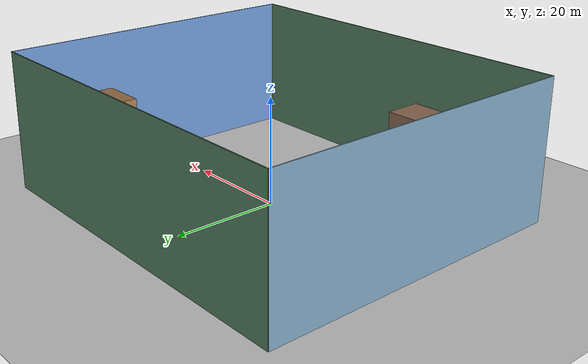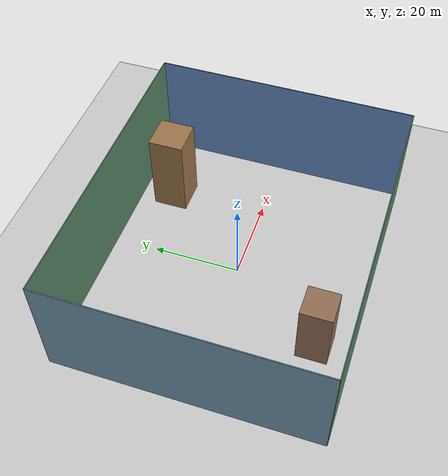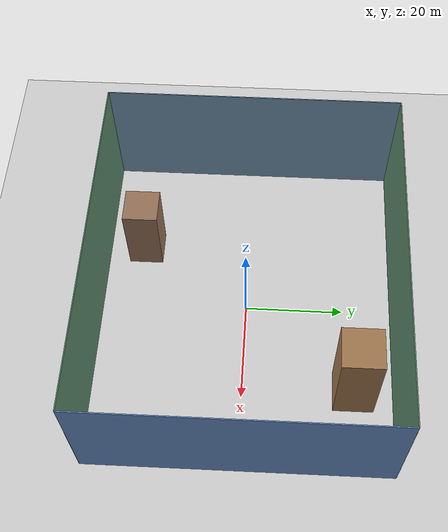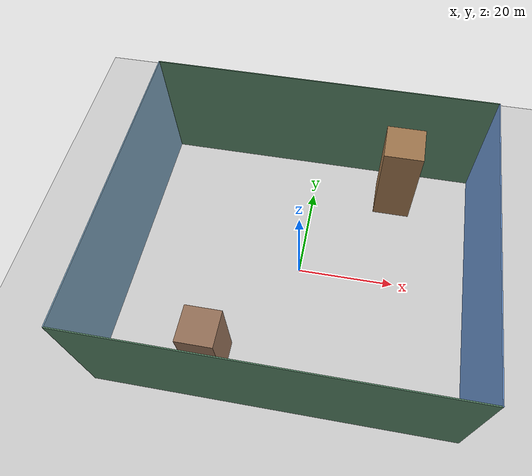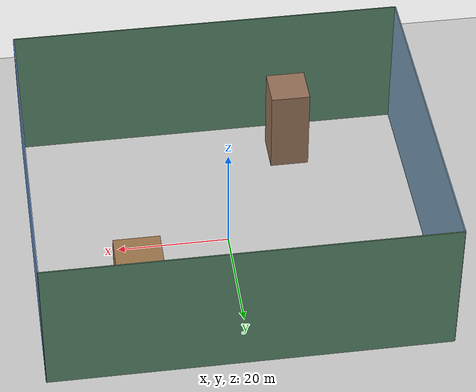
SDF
<sdf version="1.6">
 <world name="small_track">
  <scene>
   <background>0.68 0.80 0.94 1.0</background>
   <ambient>1.0 1.0 1.0 1.0</ambient>
   <shadows>false</shadows>
   <sky>
    <clouds><speed>6</speed><direction>0.0</direction><humidity>0.3</humidity><mean_size>0.4</mean_size></clouds>
   </sky>
  </scene>
  <spherical_coordinates>
   <heading_deg>180</heading_deg>
   <latitude_deg>55.944400</latitude_deg>
   <longitude_deg>-3.18629</longitude_deg>
  </spherical_coordinates>
  <light name="sun" type="directional">
   <pose>0 0 10 0 -0 0</pose>
   <diffuse>0.8 0.8 0.8 1</diffuse>
   <specular>0.1 0.1 0.1 1</specular>
   <attenuation>
    <range>1000</range>
    <constant>0.9</constant>
    <linear>0.01</linear>
    <quadratic>0.001</quadratic>
   </attenuation>
   <direction>-0.5 0.5 -1</direction>
  </light>
  <include><uri>model://asphalt_plane</uri></include>
  <model name="small_track_backdrop">
   <static>true</static>
   <link name="visuals">
    <visual name="front_wall">
     <pose>35 0 13 0 0 0</pose>
     <geometry><box><size>0.2 60 26</size></box></geometry>
     <material>
      <ambient>0.40 0.56 0.78 1</ambient>
      <diffuse>0.40 0.56 0.78 1</diffuse>
      <specular>0.01 0.01 0.01 1</specular>
     </material>
     <cast_shadows>false</cast_shadows>
    </visual>
    <visual name="rear_wall">
     <pose>-35 0 13 0 0 0</pose>
     <geometry><box><size>0.2 60 26</size></box></geometry>
     <material>
      <ambient>0.46 0.60 0.70 1</ambient>
      <diffuse>0.46 0.60 0.70 1</diffuse>
      <specular>0.01 0.01 0.01 1</specular>
     </material>
     <cast_shadows>false</cast_shadows>
    </visual>
    <visual name="left_wall">
     <pose>0 30 13 0 0 0</pose>
     <geometry><box><size>70 0.2 26</size></box></geometry>
     <material>
      <ambient>0.34 0.52 0.40 1</ambient>
      <diffuse>0.34 0.52 0.40 1</diffuse>
      <specular>0.01 0.01 0.01 1</specular>
     </material>
     <cast_shadows>false</cast_shadows>
    </visual>
    <visual name="right_wall">
     <pose>0 -30 13 0 0 0</pose>
     <geometry><box><size>70 0.2 26</size></box></geometry>
     <material>
      <ambient>0.34 0.52 0.40 1</ambient>
      <diffuse>0.34 0.52 0.40 1</diffuse>
      <specular>0.01 0.01 0.01 1</specular>
     </material>
     <cast_shadows>false</cast_shadows>
    </visual>
    <visual name="landmark_tower_left">
     <pose>18 22 10 0 0 0</pose>
     <geometry><box><size>8 8 20</size></box></geometry>
     <material>
      <ambient>0.62 0.46 0.30 1</ambient>
      <diffuse>0.62 0.46 0.30 1</diffuse>
      <specular>0.02 0.02 0.02 1</specular>
     </material>
     <cast_shadows>false</cast_shadows>
    </visual>
    <visual name="landmark_tower_right">
     <pose>-14 -22 8 0 0 0</pose>
     <geometry><box><size>7 7 16</size></box></geometry>
     <material>
      <ambient>0.58 0.44 0.34 1</ambient>
      <diffuse>0.58 0.44 0.34 1</diffuse>
      <specular>0.02 0.02 0.02 1</specular>
     </material>
     <cast_shadows>false</cast_shadows>
    </visual>
   </link>
  </model>
 </world>
</sdf>
